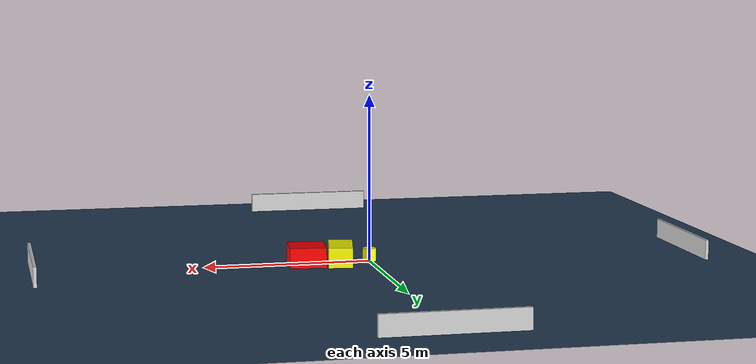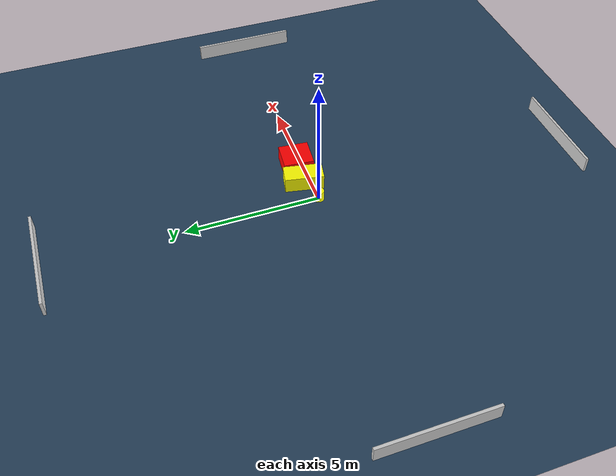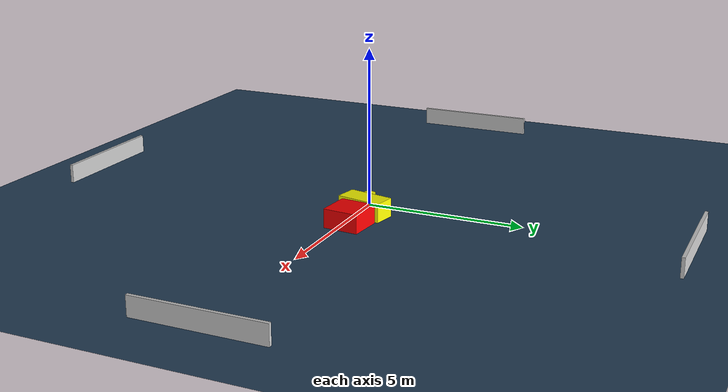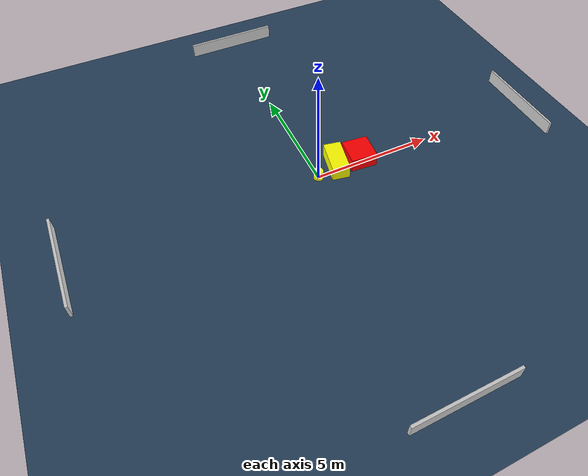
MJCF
<?xml version="1.0" ?>
<mujoco model="generated_environment">
  <option timestep="0.01" integrator="RK4" cone="elliptic"/>
  <default>
    <geom density="1"/>
  </default>
  <asset>
    <texture builtin="gradient" height="3072" name="skybox" rgb1="0.3 0.5 0.7" rgb2="0 0 0" type="skybox" width="512"/>
    <texture builtin="checker" height="300" name="groundplane" rgb1="0.2 0.3 0.4" rgb2="0.1 0.2 0.3" type="2d" width="300"/>
    <material name="groundplane" reflectance="0.2" texrepeat="5 5" texture="groundplane"/>
  </asset>
  <worldbody>
    <light dir="0 0 -1" directional="true" pos="0 0 1.5"/>
    <geom condim="3" friction="0.5 0.005 0.001" material="groundplane" name="floor" pos="0 0 0" size="0 0 0.05" type="plane"/>
    <body name="walls">
      <geom name="wall_1" condim="4" pos="-10.0 0.0 0.3" rgba="0.800000011920929 0.800000011920929 0.800000011920929 1.0" size="0.05 2.0 0.3" type="box"/>
      <geom name="wall_2" condim="4" pos="10.0 0.0 0.3" rgba="0.800000011920929 0.800000011920929 0.800000011920929 1.0" size="0.05 2.0 0.3" type="box"/>
      <geom name="wall_3" condim="4" pos="0.0 -10.0 0.3" rgba="0.800000011920929 0.800000011920929 0.800000011920929 1.0" size="2.0 0.05 0.3" type="box"/>
      <geom name="wall_4" condim="4" pos="0.0 10.0 0.3" rgba="0.800000011920929 0.800000011920929 0.800000011920929 1.0" size="2.0 0.05 0.3" type="box"/>
    </body>
    <body name="robot">
      <joint name="joint_x" type="slide" pos="0 0 0" axis="1 0 0"/>
      <joint name="joint_y" type="slide" pos="0 0 0" axis="0 1 0"/>
      <geom name="robot" type="cylinder" pos="0.0 0.0 0.2" size="0.2 0.2 0.0" mass="5.0" friction="1.0 0.005 0.0001" condim="4" rgba="1.0 1.0 0.0 1.0"/>
    </body>
    <body name="obstacle_1_movable">
      <geom name="obstacle_1_movable" condim="4" pos="0.9377057361777232 0.26575088629641663 0.3" euler="0 0 79.0086372545746" friction="0.0 0.005 0.001" rgba="1.0 1.0 0.0 1.0" size="0.7258565862048891 0.3607761611716651 0.3" type="box" mass="0.1"/>
      <joint type="free"/>
    </body>
    <body name="obstacle_2_static">
      <geom name="obstacle_2_static" condim="4" pos="1.956057573678357 0.21819044207880856 0.3" euler="0 0 264.707369467959" friction="0.0 0.005 0.001" rgba="1.0 0.0 0.0 1.0" size="0.5644625687378033 0.5460647329876438 0.3" type="box"/>
    </body>
  </worldbody>
  <actuator>
    <motor name="actuator_x" joint="joint_x" gear="1" ctrlrange="-1 1"/>
    <motor name="actuator_y" joint="joint_y" gear="1" ctrlrange="-1 1"/>
  </actuator>
</mujoco>
